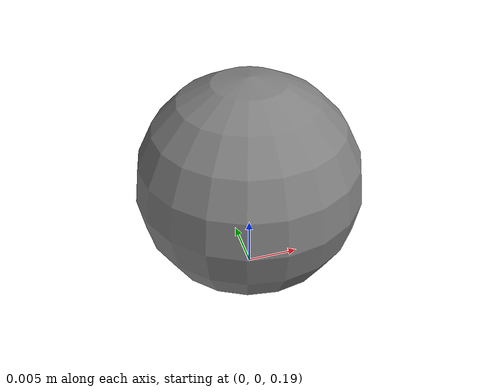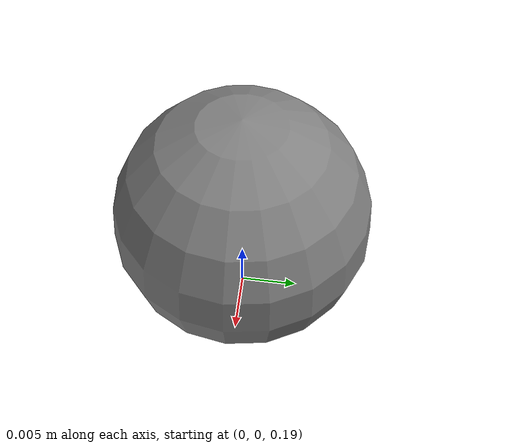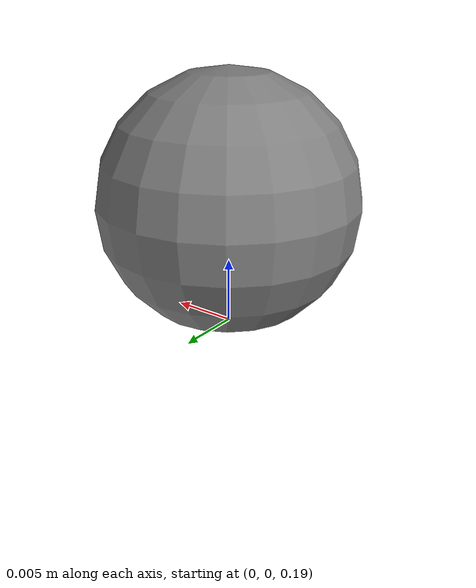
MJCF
<?xml version="1.0" encoding="utf-8"?>
<mujoco>
    <compiler angle="radian" coordinate="local" meshdir="../stls/hand" texturedir="../textures"></compiler>
    <option timestep="0.002" iterations="20" apirate="200">
        <flag warmstart="enable"></flag>
    </option>d

    <asset>
        <include file="../allegro_hand/assets/shared_asset.xml"></include>
    </asset>

    <worldbody>
        <body name="ball" pos="0 0 0.2">
            <geom type="sphere" size="0.01" mass="0.5" condim="4"></geom>
            <site pos="0 0 0" rgba="1 0 0 0" size="0.01 0.01 0.01"></site>
            <joint type="free" damping="0.01"></joint>
        </body>

        <light directional="true" ambient="0.2 0.2 0.2" diffuse="0.8 0.8 0.8" specular="0.3 0.3 0.3" castshadow="false" pos="0 1 4" dir="0 0 -1" name="light0"></light>
    </worldbody>
</mujoco>

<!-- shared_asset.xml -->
<!-- See LICENSE.md for legal notices. LICENSE.md must be kept together with this file. -->
<mujoco>
    <texture type="skybox" builtin="gradient" rgb1="0.44 0.85 0.56" rgb2="0.46 0.87 0.58" width="32" height="32"></texture>

    <texture name="robot0:texplane" type="2d" builtin="checker" rgb1="0.2 0.3 0.4" rgb2="0.1 0.15 0.2" width="512" height="512"></texture>
    <texture name="robot0:texgeom" type="cube" builtin="flat" mark="cross" width="127" height="127" rgb1="0.3 0.6 0.5" rgb2="0.3 0.6 0.5" markrgb="0 0 0" random="0.01"></texture>

    <material name="robot0:MatGnd" reflectance="0.5" texture="robot0:texplane" texrepeat="1 1" texuniform="true"></material>
    <material name="robot0:MatColl" specular="1" shininess="0.3" reflectance="0.5" rgba="0.4 0.5 0.6 1"></material>
    <material name="robot0:MatViz" specular="0.75" shininess="0.1" reflectance="0.5" rgba="0.3 0.3 0.3 1"></material>
    <material name="robot0:MatViz_Pad" specular="0.75" shininess="0.1" reflectance="0.5" rgba="0.7 0.7 0.7 1"></material>

    <material name="MatBall1" specular="0.75" shininess="0.1" reflectance="0.5" rgba="0.7 0.7 0.7 1"></material>
    <material name="MatBall2" specular="0.75" shininess="0.1" reflectance="0.5" rgba="0.7 0.7 0.7 1"></material>

    <material name="robot0:object" texture="robot0:texgeom" texuniform="false"></material>
    <material name="floor_mat" specular="0" shininess="0.5" reflectance="0" rgba="0.2 0.2 0.2 0"></material>

    <mesh name="palm"            file="palm.stl"></mesh>
    <mesh name="link_0.0"        file="link_0.0.stl"></mesh>
    <mesh name="link_1.0"        file="link_1.0.stl" />
    <mesh name="link_2.0"         file="link_2.0.stl" />
    <mesh name="link_middle"   scale="0.001 0.001 0.001" file="link_middle.stl"/>
    <mesh name="link_3.0"         file="link_3.0.stl" />
    <mesh name="link_3.0_tip"  scale="0.001 0.001 0.001" file="fingertip_V2_fixed4.stl"/>
    <mesh name="link_12.0"        file="link_12.0_right.stl" />
    <mesh name="link_13.0"        file="link_13.0.stl" />
    <mesh name="link_14.0"        file="link_14.0.stl" />
    <mesh name="link_15.0"        file="link_15.0.stl" />
    <mesh name="link_15.0_tip" scale="0.001 0.001 0.001"  file="fingertip_V2_fixed4.stl"/>
    <mesh name="tactile_sphere1" scale="0.001 0.001 0.001"  file="tactile_sphere.stl"/>
    <mesh name="tactile_sphere2" scale="0.002 0.002 0.002"  file="tactile_sphere.stl"/>

</mujoco>
